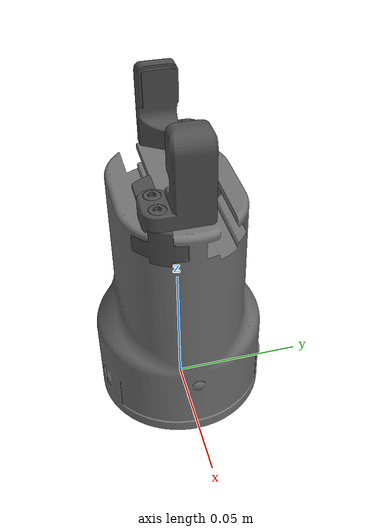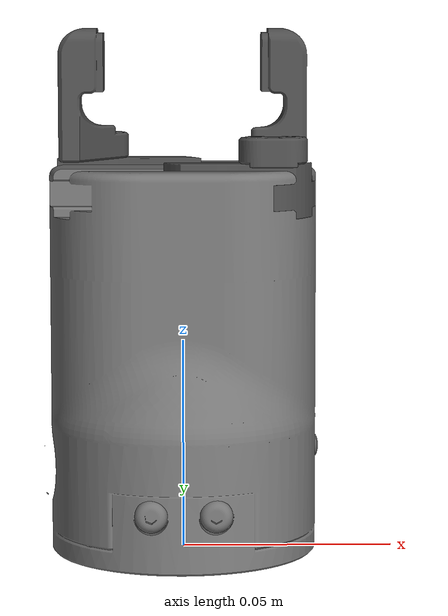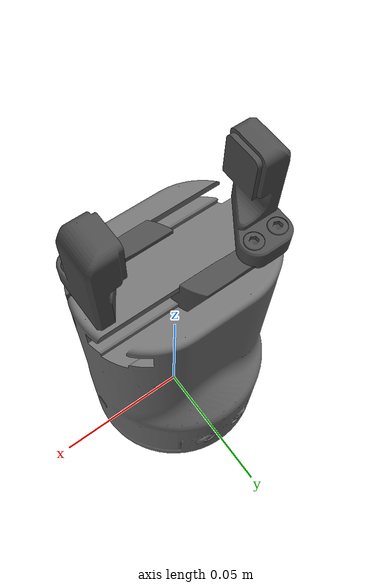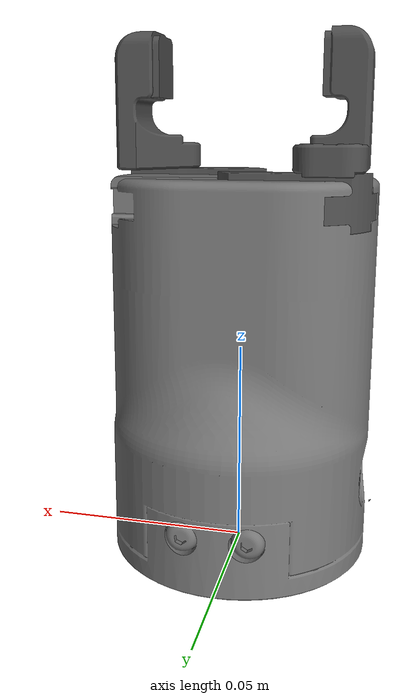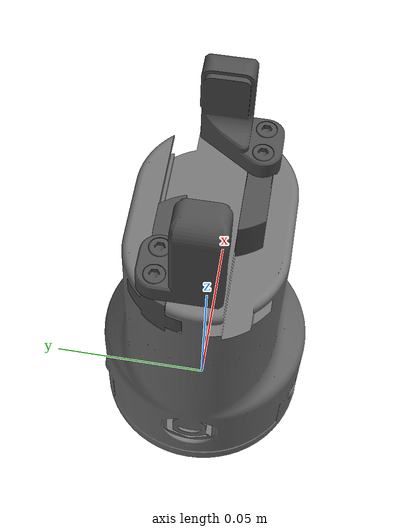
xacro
<?xml version="1.0" ?>
<robot name="pgc50" xmlns:xacro="http://wiki.ros.org/xacro">
  <xacro:include filename="$(find acroba_resources)/urdf/pgc50_macro.xacro"/>
  <xacro:pgc50 prefix=""/>
  <link name="world"/>
  <joint name="world" type="fixed">
    <origin rpy="0 0 0" xyz="0 0 0"/>
    <parent link="world"/>
    <child link="base_tool"/>
  </joint>

  <gazebo>
      <plugin name="gazebo_ros_control" filename="libgazebo_ros_control.so">
      </plugin>
    </gazebo>-
</robot>

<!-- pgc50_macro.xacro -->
<robot xmlns:xacro="http://wiki.ros.org/xacro">
<xacro:macro name="pgc50" params="prefix">
  <material name="pgc_dark_grey">
    <color rgba="0.3 0.3 0.3 1.0"/>
  </material>
  <material name="pgc_grey">
    <color rgba="0.45 0.45 0.45 1.0"/>
  </material>

  <xacro:property name="body_base_height" value="0.94"/>
  <xacro:property name="finger_length" value="0.0327"/>
	<xacro:property name="body_length" value="0.0915"/>
  <xacro:property name="stroke" value="0.035"/><!--from dataset 0.035-->
  <xacro:property name="maxeffort" value="50"/>
  <!-- Finger and body intersect for 1.3mm this is taking into account in finger_length-->
  <link name="${prefix}base_tool">
    <visual>
      <origin rpy="0 0 0" xyz="0.0 0.0 0.0"/>
      <geometry>
        <mesh filename="package://acroba_resources/meshes/pgc50/body.dae" scale="0.001 0.001 0.001"/>
      </geometry>
      <material name="pgc_grey"/>
    </visual>
    <collision>
      <origin rpy="0 0 0" xyz="0.0 0.0 0.0"/>
      <geometry>
        <mesh filename="package://acroba_resources/meshes/pgc50/body.stl" scale="0.001 0.001 0.001"/>
      </geometry>
    </collision>
    <inertial>
      <mass value="0.5"/>
      <inertia ixx="0.0037" ixy="0.0" ixz="0.0" iyy="0.0037" iyz="0.0" izz="0.0146"/>
    </inertial>
  </link>

  <link name="${prefix}base_finger_1">
    <visual>
      <origin rpy="0 0 0" xyz="0.0 0.0 0.0"/>
      <geometry>
        <mesh filename="package://acroba_resources/meshes/pgc50/finger_holder_1.stl" scale="0.001 0.001 0.001"/>
      </geometry>
      <material name="pgc_dark_grey"/>
    </visual>
    <collision>
     <origin rpy="0 0 0" xyz="0.0 0.0 0.0"/>
      <geometry>
        <mesh filename="package://acroba_resources/meshes/pgc50/finger_holder_1.stl" scale="0.001 0.001 0.001"/>
      </geometry>
    </collision>
    <inertial>
      <mass value="0.05"/>
      <inertia ixx="0.0037" ixy="0.0" ixz="0.0" iyy="0.0037" iyz="0.0" izz="0.0146"/>
    </inertial>
  </link>

  <link name="${prefix}base_finger_2">
    <visual>
      <origin rpy="0 0 0" xyz="0.0 0.0 0.0"/>
      <geometry>
        <mesh filename="package://acroba_resources/meshes/pgc50/finger_holder_2.stl" scale="0.001 0.001 0.001"/>
      </geometry>
      <material name="pgc_dark_grey"/>
    </visual>
    <collision>
     <origin rpy="0 0 0" xyz="0.0 0.0 0.0"/>
      <geometry>
        <mesh filename="package://acroba_resources/meshes/pgc50/finger_holder_2.stl" scale="0.001 0.001 0.001"/>
      </geometry>
    </collision>
    <inertial>
      <mass value="0.05"/>
      <inertia ixx="0.0037" ixy="0.0" ixz="0.0" iyy="0.0037" iyz="0.0" izz="0.0146"/>
    </inertial>
  </link>

    <link name="${prefix}finger_1">
	<visual>
		<origin xyz="0 0 0" rpy="0.0 0.0 0.0"/>
		<geometry>
			  <mesh filename="package://acroba_resources/meshes/pgc50/finger_1.stl" scale="0.001 0.001 0.001"/>
		</geometry>
		<material name="pgc_dark_grey"/>
	</visual>
	<collision>
		<origin xyz="0 0 0" rpy="0.0 0.0 0.0"/>
		<geometry>
			 <mesh filename="package://acroba_resources/meshes/pgc50/finger_1.stl" scale="0.001 0.001 0.001"/>
		</geometry>
	</collision>
	<inertial>
		<mass value="0.1"/>
		<inertia ixx="0.0037" ixy="0.0" ixz="0.0" iyy="0.0037" iyz="0.0" izz="0.0146"/>
	</inertial>
</link>

  <link name="${prefix}finger_2">
	<visual>
		<origin xyz="0 0 0" rpy="0.0 0.0 0.0"/>
		<geometry>
			  <mesh filename="package://acroba_resources/meshes/pgc50/finger_2.stl" scale="0.001 0.001 0.001"/>
		</geometry>
		<material name="pgc_dark_grey"/>
	</visual>
	<collision>
		<origin xyz="0 0 0" rpy="0.0 0.0 0.0"/>
		<geometry>
			 <mesh filename="package://acroba_resources/meshes/pgc50/finger_2.stl" scale="0.001 0.001 0.001"/>
		</geometry>
	</collision>
	<inertial>
		<mass value="0.1"/>
		<inertia ixx="0.0037" ixy="0.0" ixz="0.0" iyy="0.0037" iyz="0.0" izz="0.0146"/>
	</inertial>
</link>

  <joint name="${prefix}joint_base_finger_1" type="prismatic">
	<origin rpy="0 0 0" xyz="0 0 0"/>
    <parent link="${prefix}base_tool"/>
    <child link="${prefix}base_finger_1"/>
	<axis xyz="1 0 0"/>
	<limit effort="${maxeffort}" lower="0" upper="${stroke*0.5}" velocity="10"/>
  </joint>

  <joint name="${prefix}joint_base_finger_2" type="prismatic">
	<origin rpy="0 0 0" xyz="0 0 0"/>
    <parent link="${prefix}base_tool"/>
    <child link="${prefix}base_finger_2"/>
	<axis xyz="-1 0 0"/>
	<limit effort="${maxeffort}" lower="0" upper="${stroke*0.5}" velocity="10"/>
  </joint>

  <joint name="${prefix}joint_finger_1" type="fixed">
  <origin rpy="0 0 0" xyz="0 0 0"/>
    <parent link="${prefix}base_finger_1"/>
    <child link="${prefix}finger_1"/>
  </joint>

 <joint name="${prefix}joint_finger_2" type="fixed">
  <origin rpy="0 0 0" xyz="0 0 0"/>
    <parent link="${prefix}base_finger_2"/>
    <child link="${prefix}finger_2"/>
  </joint>

  <link name="gripping_point" />
  <joint name="joint_gripping" type="fixed">
	<origin rpy="0 0 0" xyz="0. 0 ${body_length + finger_length}"/>
    <parent link="${prefix}base_tool"/>
    <child link="${prefix}gripping_point"/>
  </joint>

  <!-- Add gazebo colors-->
  <gazebo reference="${prefix}base_tool">
    <material>Gazebo/FlatBlack</material>
  </gazebo>
  <gazebo reference="${prefix}base_finger_1">
    <material>Gazebo/FlatBlack</material>
  </gazebo>
  <gazebo reference="${prefix}base_finger_2">
    <material>Gazebo/FlatBlack</material>
  </gazebo>
  <gazebo reference="${prefix}finger_1">
    <material>Gazebo/FlatBlack</material>
  </gazebo>
  <gazebo reference="${prefix}finger_2">
    <material>Gazebo/FlatBlack</material>
  </gazebo>

  <!-- Transmissions-->
  <transmission name="${prefix}joint_finger1_trans">
        <type>transmission_interface/SimpleTransmission</type>
        <joint name="${prefix}joint_base_finger_1">
            <hardwareInterface>hardware_interface/EffortJointInterface</hardwareInterface>
        </joint>
        <actuator name="${prefix}joint_base_finger_1_motor">
            <hardwareInterface>hardware_interface/EffortJointInterface</hardwareInterface>
            <mechanicalReduction>1</mechanicalReduction>
        </actuator>
    </transmission>

   <transmission name="${prefix}joint_finger2_trans">
        <type>transmission_interface/SimpleTransmission</type>
        <joint name="${prefix}joint_base_finger_2">
            <hardwareInterface>hardware_interface/EffortJointInterface</hardwareInterface>
        </joint>
        <actuator name="${prefix}joint_base_finger_2_motor">
            <hardwareInterface>hardware_interface/EffortJointInterface</hardwareInterface>
            <mechanicalReduction>1</mechanicalReduction>
        </actuator>
    </transmission>

  <disable_collision link1="wrist_3_link" link2="base_tool">
  </disable_collision>
<!-- Disabling collision for gripper-->
<disable_collision link1="${prefix}base_tool" link2="${prefix}base_finger_1">
  </disable_collision>
  <disable_collision link1="${prefix}base_tool" link2="b${prefix}ase_finger_2">
  </disable_collision>
  <disable_collision link1="${prefix}base_finger_2" link2="${prefix}base_finger_1">
  </disable_collision>
  <disable_collision link1="${prefix}base_tool" link2="${prefix}finger_1">
  </disable_collision>
  <disable_collision link1="${prefix}base_tool" link2="${prefix}finger_2">
  </disable_collision>
	</xacro:macro>
</robot>
